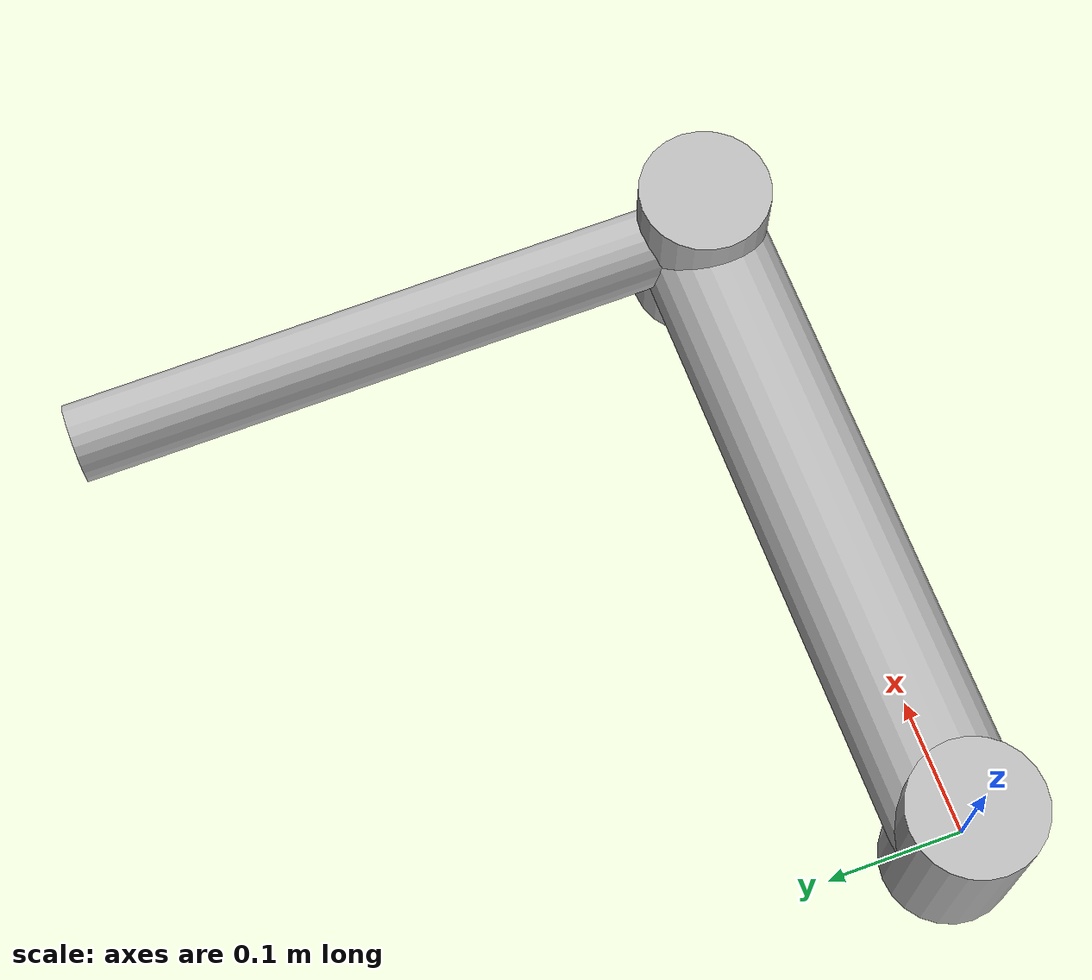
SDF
<?xml version='1.0'?>
<sdf version='1.9'>
    <model name="2R_planar_robot">
        <static>false</static>

        <link name="l1">
            <pose>0.25 0 0 0 1.6 0</pose>
            <collision name="l1_collision">
                <geometry>
                    <cylinder>
                        <radius>0.07</radius>
                        <length>0.5</length>
                    </cylinder>
                </geometry>
            </collision>
            <visual name="l1_visual">
                <geometry>
                    <cylinder>
                        <radius>0.05</radius>
                        <length>0.5</length>
                    </cylinder>
                </geometry>
            </visual>
        </link>

        <link name="l2">
            <pose>0.5 0.25 0 -1.6 0 0</pose>
            <collision name="l2_collision">
                <geometry>
                    <cylinder>
                        <radius>0.07</radius>
                        <length>0.5</length>
                    </cylinder>
                </geometry>
            </collision>
            <visual name="l2_visual">
                <geometry>
                    <cylinder>
                        <radius>0.03</radius>
                        <length>0.5</length>
                    </cylinder>
                </geometry>
            </visual>
        </link>

        <link name="joint_case1">
        	<pose>0 0 0 0 0 0</pose>
        	<visual name="visual_case1">
        		<geometry>
	        		<cylinder>
                        <radius>0.05</radius>
                        <length>0.14</length>
    		        </cylinder>
    		     </geometry>
        	</visual>
        </link>

         <link name="joint_case2">
        	<pose>0.5 0 0 0 0 0</pose>
        	<visual name="visual_case2">
        		<geometry>
	        		<cylinder>
                        <radius>0.05</radius>
                        <length>0.14</length>
    		        </cylinder>
    		     </geometry>
        	</visual>
        </link>

        <joint name='q1' type='revolute'>
            <parent>world</parent>
            <child>l1</child>
            <pose relative_to='l1'>0 0 -0.25  0 -1.6 0  </pose>
            <axis>
                <xyz>0 0 1</xyz>
                <limit>
                    <lower>0.0</lower>
                    <upper>3.14</upper>
                </limit>
            </axis>
        </joint>

        <joint name='q2' type='revolute'>
            <parent>l1</parent>
            <child>l2</child>
            <pose relative_to='l2'>0 0 -0.25 -1.6 0 0</pose>
            <axis>
                <xyz>0 0 1</xyz>
                <limit>
                    <lower>0.0</lower>
                    <upper>3.14</upper>
                </limit>
            </axis>
        </joint>

    </model>
</sdf>
